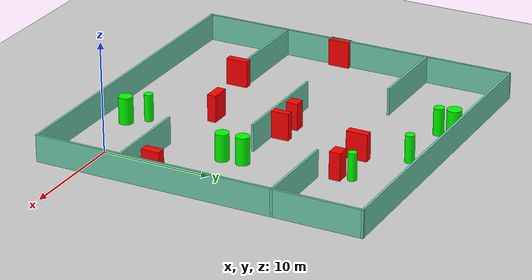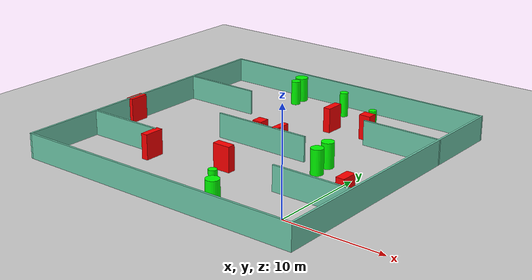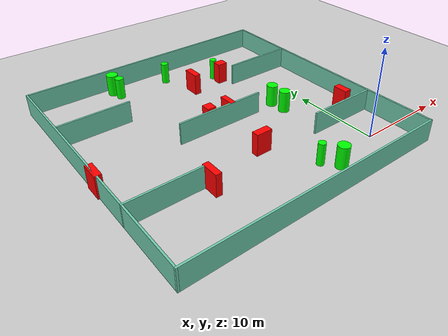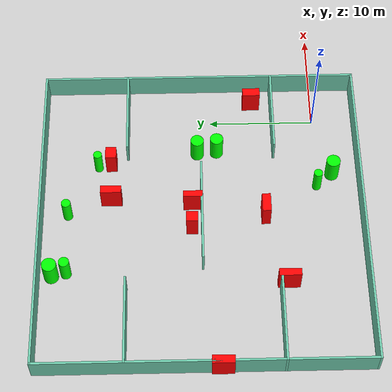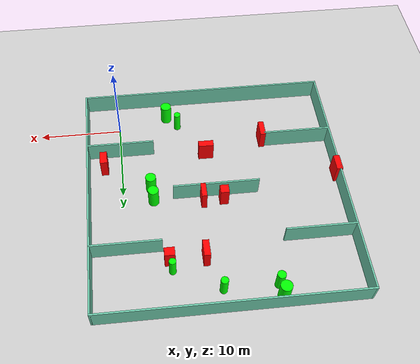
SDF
<sdf version="1.7">
 <world name="default">
  <light name="sun" type="directional">
   <pose>0 0 10 0 -0 0</pose>
   <diffuse>0.8 0.8 0.8 1</diffuse>
   <specular>0.2 0.2 0.2 1</specular>
   <attenuation>
    <range>1000</range>
    <constant>0.9</constant>
    <linear>0.01</linear>
    <quadratic>0.001</quadratic>
   </attenuation>
   <direction>-0.5 0.1 -0.9</direction>
   <spot><inner_angle>0</inner_angle><outer_angle>0</outer_angle><falloff>0</falloff></spot>
  </light>
  <model name="ground_plane">
   <static>1</static>
   <link name="link">
    <collision name="collision">
     <geometry><plane><normal>0 0 1</normal><size>100 100</size></plane></geometry>
     <surface>
      <contact><collide_bitmask>65535</collide_bitmask></contact>
      <friction><ode><mu>100</mu><mu2>50</mu2></ode></friction>
     </surface>
    </collision>
    <visual name="visual">
     <cast_shadows>0</cast_shadows>
     <geometry><plane><normal>0 0 1</normal><size>100 100</size></plane></geometry>
     <material>
      <script><uri>file://media/materials/scripts/gazebo.material</uri><name>Gazebo/Grey</name></script>
     </material>
    </visual>
   </link>
  </model>
  <gravity>0 0 -9.8</gravity>
  <magnetic_field>6e-06 2.3e-05 -4.2e-05</magnetic_field>
  <atmosphere type="adiabatic"/>
  <physics type="ode">
   <max_step_size>0.001</max_step_size>
   <real_time_factor>1</real_time_factor>
   <real_time_update_rate>1000</real_time_update_rate>
  </physics>
  <scene><ambient>0.4 0.4 0.4 1</ambient><background>0.7 0.7 0.7 1</background><shadows>1</shadows></scene>
  <spherical_coordinates>
   <surface_model>EARTH_WGS84</surface_model>
   <latitude_deg>0</latitude_deg>
   <longitude_deg>0</longitude_deg>
   <elevation>0</elevation>
   <heading_deg>0</heading_deg>
  </spherical_coordinates>
  <model name="my_base_walls">
   <link name="Wall_10">
    <collision name="Wall_10_Collision">
     <geometry><box><size>8.2 0.2 2.5</size></box></geometry>
     <pose>0 0 1.25 0 -0 0</pose>
    </collision>
    <visual name="Wall_10_Visual">
     <pose>0 0 1.25 0 -0 0</pose>
     <geometry><box><size>8.2 0.2 2.5</size></box></geometry>
     <material>
      <script><uri>file://media/materials/scripts/gazebo.material</uri><name>Gazebo/Grey</name></script>
      <ambient>0.435294 0.796078 0.67451 1</ambient>
     </material>
     <meta><layer>0</layer></meta>
    </visual>
    <pose>-11 -7 0 0 -0 0</pose>
   </link>
   <link name="Wall_12">
    <collision name="Wall_12_Collision">
     <geometry><box><size>8.2 0.2 2.5</size></box></geometry>
     <pose>0 0 1.25 0 -0 0</pose>
    </collision>
    <visual name="Wall_12_Visual">
     <pose>0 0 1.25 0 -0 0</pose>
     <geometry><box><size>8.2 0.2 2.5</size></box></geometry>
     <material>
      <script><uri>file://media/materials/scripts/gazebo.material</uri><name>Gazebo/Grey</name></script>
      <ambient>0.435294 0.796078 0.67451 1</ambient>
     </material>
     <meta><layer>0</layer></meta>
    </visual>
    <pose>-11 7 0 0 -0 0</pose>
   </link>
   <link name="Wall_14">
    <collision name="Wall_14_Collision">
     <geometry><box><size>8.2 0.2 2.5</size></box></geometry>
     <pose>0 0 1.25 0 -0 0</pose>
    </collision>
    <visual name="Wall_14_Visual">
     <pose>0 0 1.25 0 -0 0</pose>
     <geometry><box><size>8.2 0.2 2.5</size></box></geometry>
     <material>
      <script><uri>file://media/materials/scripts/gazebo.material</uri><name>Gazebo/Grey</name></script>
      <ambient>0.435294 0.796078 0.67451 1</ambient>
     </material>
     <meta><layer>0</layer></meta>
    </visual>
    <pose>11 7 0 0 -0 3.14159</pose>
   </link>
   <link name="Wall_16">
    <collision name="Wall_16_Collision">
     <geometry><box><size>10.2 0.2 2.5</size></box></geometry>
     <pose>0 0 1.25 0 -0 0</pose>
    </collision>
    <visual name="Wall_16_Visual">
     <pose>0 0 1.25 0 -0 0</pose>
     <geometry><box><size>10.2 0.2 2.5</size></box></geometry>
     <material>
      <script><uri>file://media/materials/scripts/gazebo.material</uri><name>Gazebo/Grey</name></script>
      <ambient>0.435294 0.796078 0.67451 1</ambient>
     </material>
     <meta><layer>0</layer></meta>
    </visual>
    <pose>0 0 0 0 -0 3.14159</pose>
   </link>
   <link name="Wall_2">
    <collision name="Wall_2_Collision">
     <geometry><box><size>30.2 0.2 2.5</size></box></geometry>
     <pose>0 0 1.25 0 -0 0</pose>
    </collision>
    <visual name="Wall_2_Visual">
     <pose>0 0 1.25 0 -0 0</pose>
     <geometry><box><size>30.2 0.2 2.5</size></box></geometry>
     <material>
      <script><uri>file://media/materials/scripts/gazebo.material</uri><name>Gazebo/Grey</name></script>
      <ambient>0.435294 0.796078 0.67451 1</ambient>
     </material>
     <meta><layer>0</layer></meta>
    </visual>
    <pose>0 -15 0 0 -0 3.14159</pose>
   </link>
   <link name="Wall_3">
    <collision name="Wall_3_Collision">
     <geometry><box><size>30.2 0.2 2.5</size></box></geometry>
     <pose>0 0 1.25 0 -0 0</pose>
    </collision>
    <visual name="Wall_3_Visual">
     <pose>0 0 1.25 0 -0 0</pose>
     <geometry><box><size>30.2 0.2 2.5</size></box></geometry>
     <material>
      <script><uri>file://media/materials/scripts/gazebo.material</uri><name>Gazebo/Grey</name></script>
      <ambient>0.435294 0.796078 0.67451 1</ambient>
     </material>
     <meta><layer>0</layer></meta>
    </visual>
    <pose>-15 0 0 0 -0 1.5708</pose>
   </link>
   <link name="Wall_4">
    <collision name="Wall_4_Collision">
     <geometry><box><size>30.2 0.2 2.5</size></box></geometry>
     <pose>0 0 1.25 0 -0 0</pose>
    </collision>
    <visual name="Wall_4_Visual">
     <pose>0 0 1.25 0 -0 0</pose>
     <geometry><box><size>30.2 0.2 2.5</size></box></geometry>
     <material>
      <script><uri>file://media/materials/scripts/gazebo.material</uri><name>Gazebo/Grey</name></script>
      <ambient>0.435294 0.796078 0.67451 1</ambient>
     </material>
     <meta><layer>0</layer></meta>
    </visual>
    <pose>0 15 0 0 -0 0</pose>
   </link>
   <link name="Wall_6">
    <collision name="Wall_6_Collision">
     <geometry><box><size>30.2 0.2 2.5</size></box></geometry>
     <pose>0 0 1.25 0 -0 0</pose>
    </collision>
    <visual name="Wall_6_Visual">
     <pose>0 0 1.25 0 -0 0</pose>
     <geometry><box><size>30.2 0.2 2.5</size></box></geometry>
     <material>
      <script><uri>file://media/materials/scripts/gazebo.material</uri><name>Gazebo/Grey</name></script>
      <ambient>0.435294 0.796078 0.67451 1</ambient>
     </material>
     <meta><layer>0</layer></meta>
    </visual>
    <pose>15 0 0 0 -0 1.5708</pose>
   </link>
   <link name="Wall_8">
    <collision name="Wall_8_Collision">
     <geometry><box><size>8.2 0.2 2.5</size></box></geometry>
     <pose>0 0 1.25 0 -0 0</pose>
    </collision>
    <visual name="Wall_8_Visual">
     <pose>0 0 1.25 0 -0 0</pose>
     <geometry><box><size>8.2 0.2 2.5</size></box></geometry>
     <material>
      <script><uri>file://media/materials/scripts/gazebo.material</uri><name>Gazebo/Grey</name></script>
      <ambient>0.435294 0.796078 0.67451 1</ambient>
     </material>
     <meta><layer>0</layer></meta>
    </visual>
    <pose>11 -7 0 0 -0 3.14159</pose>
   </link>
   <static>1</static>
   <pose>-11 11 0 0 -0 0</pose>
  </model>
  <model name="cylinder1">
   <static>1</static>
   <link name="link">
    <inertial>
     <mass>1</mass>
     <inertia><ixx>0.5</ixx><ixy>0</ixy><ixz>0</ixz><iyy>0.5</iyy><iyz>0</iyz><izz>1</izz></inertia>
    </inertial>
    <collision name="collision">
     <geometry><cylinder><radius>0.39773920601474416</radius><length>2.5</length></cylinder></geometry>
    </collision>
    <visual name="visual">
     <geometry><cylinder><radius>0.39773920601474416</radius><length>2.5</length></cylinder></geometry>
     <material>
      <ambient>0 1 0 1</ambient>
      <diffuse>0 1 0 1</diffuse>
      <specular>0.1 0.1 0.1 1</specular>
      <emissive>0 0 0 0</emissive>
     </material>
    </visual>
   </link>
   <pose>-4.966178810164049 20.776802019662576 1.25 0 0 0</pose>
  </model>
  <model name="cylinder2">
   <static>1</static>
   <link name="link">
    <inertial>
     <mass>1</mass>
     <inertia><ixx>0.5</ixx><ixy>0</ixy><ixz>0</ixz><iyy>0.5</iyy><iyz>0</iyz><izz>1</izz></inertia>
    </inertial>
    <collision name="collision">
     <geometry><cylinder><radius>0.6487309719642617</radius><length>2.5</length></cylinder></geometry>
    </collision>
    <visual name="visual">
     <geometry><cylinder><radius>0.6487309719642617</radius><length>2.5</length></cylinder></geometry>
     <material>
      <ambient>0 1 0 1</ambient>
      <diffuse>0 1 0 1</diffuse>
      <specular>0.1 0.1 0.1 1</specular>
      <emissive>0 0 0 0</emissive>
     </material>
    </visual>
   </link>
   <pose>-6.097893409201156 -1.4959501579975467 1.25 0 0 0</pose>
  </model>
  <model name="cylinder3">
   <static>1</static>
   <link name="link">
    <inertial>
     <mass>1</mass>
     <inertia><ixx>0.5</ixx><ixy>0</ixy><ixz>0</ixz><iyy>0.5</iyy><iyz>0</iyz><izz>1</izz></inertia>
    </inertial>
    <collision name="collision">
     <geometry><cylinder><radius>0.4312703089803247</radius><length>2.5</length></cylinder></geometry>
    </collision>
    <visual name="visual">
     <geometry><cylinder><radius>0.4312703089803247</radius><length>2.5</length></cylinder></geometry>
     <material>
      <ambient>0 1 0 1</ambient>
      <diffuse>0 1 0 1</diffuse>
      <specular>0.1 0.1 0.1 1</specular>
      <emissive>0 0 0 0</emissive>
     </material>
    </visual>
   </link>
   <pose>-10.244655029453149 23.548341655841156 1.25 0 0 0</pose>
  </model>
  <model name="cylinder4">
   <static>1</static>
   <link name="link">
    <inertial>
     <mass>1</mass>
     <inertia><ixx>0.5</ixx><ixy>0</ixy><ixz>0</ixz><iyy>0.5</iyy><iyz>0</iyz><izz>1</izz></inertia>
    </inertial>
    <collision name="collision">
     <geometry><cylinder><radius>0.4044187753928252</radius><length>2.5</length></cylinder></geometry>
    </collision>
    <visual name="visual">
     <geometry><cylinder><radius>0.4044187753928252</radius><length>2.5</length></cylinder></geometry>
     <material>
      <ambient>0 1 0 1</ambient>
      <diffuse>0 1 0 1</diffuse>
      <specular>0.1 0.1 0.1 1</specular>
      <emissive>0 0 0 0</emissive>
     </material>
    </visual>
   </link>
   <pose>-7.4131797498391805 0.021878081976613117 1.25 0 0 0</pose>
  </model>
  <model name="cylinder5">
   <static>1</static>
   <link name="link">
    <inertial>
     <mass>1</mass>
     <inertia><ixx>0.5</ixx><ixy>0</ixy><ixz>0</ixz><iyy>0.5</iyy><iyz>0</iyz><izz>1</izz></inertia>
    </inertial>
    <collision name="collision">
     <geometry><cylinder><radius>0.6215566830722362</radius><length>2.5</length></cylinder></geometry>
    </collision>
    <visual name="visual">
     <geometry><cylinder><radius>0.6215566830722362</radius><length>2.5</length></cylinder></geometry>
     <material>
      <ambient>0 1 0 1</ambient>
      <diffuse>0 1 0 1</diffuse>
      <specular>0.1 0.1 0.1 1</specular>
      <emissive>0 0 0 0</emissive>
     </material>
    </visual>
   </link>
   <pose>-3.5636596658001096 11.328460848494792 1.25 0 0 0</pose>
  </model>
  <model name="cylinder6">
   <static>1</static>
   <link name="link">
    <inertial>
     <mass>1</mass>
     <inertia><ixx>0.5</ixx><ixy>0</ixy><ixz>0</ixz><iyy>0.5</iyy><iyz>0</iyz><izz>1</izz></inertia>
    </inertial>
    <collision name="collision">
     <geometry><cylinder><radius>0.4841477561469988</radius><length>2.5</length></cylinder></geometry>
    </collision>
    <visual name="visual">
     <geometry><cylinder><radius>0.4841477561469988</radius><length>2.5</length></cylinder></geometry>
     <material>
      <ambient>0 1 0 1</ambient>
      <diffuse>0 1 0 1</diffuse>
      <specular>0.1 0.1 0.1 1</specular>
      <emissive>0 0 0 0</emissive>
     </material>
    </visual>
   </link>
   <pose>-16.3467686682445 23.49086241897885 1.25 0 0 0</pose>
  </model>
  <model name="cylinder7">
   <static>1</static>
   <link name="link">
    <inertial>
     <mass>1</mass>
     <inertia><ixx>0.5</ixx><ixy>0</ixy><ixz>0</ixz><iyy>0.5</iyy><iyz>0</iyz><izz>1</izz></inertia>
    </inertial>
    <collision name="collision">
     <geometry><cylinder><radius>0.6191594963244941</radius><length>2.5</length></cylinder></geometry>
    </collision>
    <visual name="visual">
     <geometry><cylinder><radius>0.6191594963244941</radius><length>2.5</length></cylinder></geometry>
     <material>
      <ambient>0 1 0 1</ambient>
      <diffuse>0 1 0 1</diffuse>
      <specular>0.1 0.1 0.1 1</specular>
      <emissive>0 0 0 0</emissive>
     </material>
    </visual>
   </link>
   <pose>-3.390610549267251 9.47016851570031 1.25 0 0 0</pose>
  </model>
  <model name="cylinder8">
   <static>1</static>
   <link name="link">
    <inertial>
     <mass>1</mass>
     <inertia><ixx>0.5</ixx><ixy>0</ixy><ixz>0</ixz><iyy>0.5</iyy><iyz>0</iyz><izz>1</izz></inertia>
    </inertial>
    <collision name="collision">
     <geometry><cylinder><radius>0.6679686240588119</radius><length>2.5</length></cylinder></geometry>
    </collision>
    <visual name="visual">
     <geometry><cylinder><radius>0.6679686240588119</radius><length>2.5</length></cylinder></geometry>
     <material>
      <ambient>0 1 0 1</ambient>
      <diffuse>0 1 0 1</diffuse>
      <specular>0.1 0.1 0.1 1</specular>
      <emissive>0 0 0 0</emissive>
     </material>
    </visual>
   </link>
   <pose>-16.600472337300502 24.810342907404458 1.25 0 0 0</pose>
  </model>
  <model name="box1">
   <static>1</static>
   <link name="link">
    <inertial>
     <mass>1</mass>
     <inertia><ixx>0.083</ixx><ixy>0</ixy><ixz>0</ixz><iyy>0.083</iyy><iyz>0</iyz><izz>0.083</izz></inertia>
    </inertial>
    <collision name="collision">
     <geometry><box><size>0.6165797989785441 1.8076861081068085 2.5</size></box></geometry>
    </collision>
    <visual name="visual">
     <geometry><box><size>0.6165797989785441 1.8076861081068085 2.5</size></box></geometry>
     <material>
      <ambient>1 0 0 1</ambient>
      <diffuse>1 0 0 1</diffuse>
      <specular>0.1 0.1 0.1 1</specular>
      <emissive>0 0 0 0</emissive>
     </material>
    </visual>
    <sensor name="my_contact" type="contact">
     <contact><collision>box_collision</collision><topic>__default_topic__</topic></contact>
    </sensor>
   </link>
   <pose>-9.428998333733134 11.820715139027989 1.25 0 0 0</pose>
  </model>
  <model name="box2">
   <static>1</static>
   <link name="link">
    <inertial>
     <mass>1</mass>
     <inertia><ixx>0.083</ixx><ixy>0</ixy><ixz>0</ixz><iyy>0.083</iyy><iyz>0</iyz><izz>0.083</izz></inertia>
    </inertial>
    <collision name="collision">
     <geometry><box><size>0.671224652059381 2.027996404587087 2.5</size></box></geometry>
    </collision>
    <visual name="visual">
     <geometry><box><size>0.671224652059381 2.027996404587087 2.5</size></box></geometry>
     <material>
      <ambient>1 0 0 1</ambient>
      <diffuse>1 0 0 1</diffuse>
      <specular>0.1 0.1 0.1 1</specular>
      <emissive>0 0 0 0</emissive>
     </material>
    </visual>
    <sensor name="my_contact" type="contact">
     <contact><collision>box_collision</collision><topic>__default_topic__</topic></contact>
    </sensor>
   </link>
   <pose>-17.7294485572609 3.2625806154901458 1.25 0 0 0</pose>
  </model>
  <model name="box3">
   <static>1</static>
   <link name="link">
    <inertial>
     <mass>1</mass>
     <inertia><ixx>0.083</ixx><ixy>0</ixy><ixz>0</ixz><iyy>0.083</iyy><iyz>0</iyz><izz>0.083</izz></inertia>
    </inertial>
    <collision name="collision">
     <geometry><box><size>0.8497718175235993 1.6683828275438282 2.5</size></box></geometry>
    </collision>
    <visual name="visual">
     <geometry><box><size>0.8497718175235993 1.6683828275438282 2.5</size></box></geometry>
     <material>
      <ambient>1 0 0 1</ambient>
      <diffuse>1 0 0 1</diffuse>
      <specular>0.1 0.1 0.1 1</specular>
      <emissive>0 0 0 0</emissive>
     </material>
    </visual>
    <sensor name="my_contact" type="contact">
     <contact><collision>box_collision</collision><topic>__default_topic__</topic></contact>
    </sensor>
   </link>
   <pose>2.0656806394460396 5.95520720719594 1.25 0 0 0</pose>
  </model>
  <model name="box4">
   <static>1</static>
   <link name="link">
    <inertial>
     <mass>1</mass>
     <inertia><ixx>0.083</ixx><ixy>0</ixy><ixz>0</ixz><iyy>0.083</iyy><iyz>0</iyz><izz>0.083</izz></inertia>
    </inertial>
    <collision name="collision">
     <geometry><box><size>1.8161889812360519 0.8078899212424762 2.5</size></box></geometry>
    </collision>
    <visual name="visual">
     <geometry><box><size>1.8161889812360519 0.8078899212424762 2.5</size></box></geometry>
     <material>
      <ambient>1 0 0 1</ambient>
      <diffuse>1 0 0 1</diffuse>
      <specular>0.1 0.1 0.1 1</specular>
      <emissive>0 0 0 0</emissive>
     </material>
    </visual>
    <sensor name="my_contact" type="contact">
     <contact><collision>box_collision</collision><topic>__default_topic__</topic></contact>
    </sensor>
   </link>
   <pose>-10.49112688561242 5.026596757921903 1.25 0 0 0</pose>
  </model>
  <model name="box5">
   <static>1</static>
   <link name="link">
    <inertial>
     <mass>1</mass>
     <inertia><ixx>0.083</ixx><ixy>0</ixy><ixz>0</ixz><iyy>0.083</iyy><iyz>0</iyz><izz>0.083</izz></inertia>
    </inertial>
    <collision name="collision">
     <geometry><box><size>1.0220639488328795 1.07745386745199 2.5</size></box></geometry>
    </collision>
    <visual name="visual">
     <geometry><box><size>1.0220639488328795 1.07745386745199 2.5</size></box></geometry>
     <material>
      <ambient>1 0 0 1</ambient>
      <diffuse>1 0 0 1</diffuse>
      <specular>0.1 0.1 0.1 1</specular>
      <emissive>0 0 0 0</emissive>
     </material>
    </visual>
    <sensor name="my_contact" type="contact">
     <contact><collision>box_collision</collision><topic>__default_topic__</topic></contact>
    </sensor>
   </link>
   <pose>-11.84613730899089 11.936582800894689 1.25 0 0 0</pose>
  </model>
  <model name="box6">
   <static>1</static>
   <link name="link">
    <inertial>
     <mass>1</mass>
     <inertia><ixx>0.083</ixx><ixy>0</ixy><ixz>0</ixz><iyy>0.083</iyy><iyz>0</iyz><izz>0.083</izz></inertia>
    </inertial>
    <collision name="collision">
     <geometry><box><size>1.1865753521804732 1.0081276482307682 2.5</size></box></geometry>
    </collision>
    <visual name="visual">
     <geometry><box><size>1.1865753521804732 1.0081276482307682 2.5</size></box></geometry>
     <material>
      <ambient>1 0 0 1</ambient>
      <diffuse>1 0 0 1</diffuse>
      <specular>0.1 0.1 0.1 1</specular>
      <emissive>0 0 0 0</emissive>
     </material>
    </visual>
    <sensor name="my_contact" type="contact">
     <contact><collision>box_collision</collision><topic>__default_topic__</topic></contact>
    </sensor>
   </link>
   <pose>-4.751596835642765 19.537991898220156 1.25 0 0 0</pose>
  </model>
  <model name="box7">
   <static>1</static>
   <link name="link">
    <inertial>
     <mass>1</mass>
     <inertia><ixx>0.083</ixx><ixy>0</ixy><ixz>0</ixz><iyy>0.083</iyy><iyz>0</iyz><izz>0.083</izz></inertia>
    </inertial>
    <collision name="collision">
     <geometry><box><size>0.7371696684545069 2.0087469950894667 2.5</size></box></geometry>
    </collision>
    <visual name="visual">
     <geometry><box><size>0.7371696684545069 2.0087469950894667 2.5</size></box></geometry>
     <material>
      <ambient>1 0 0 1</ambient>
      <diffuse>1 0 0 1</diffuse>
      <specular>0.1 0.1 0.1 1</specular>
      <emissive>0 0 0 0</emissive>
     </material>
    </visual>
    <sensor name="my_contact" type="contact">
     <contact><collision>box_collision</collision><topic>__default_topic__</topic></contact>
    </sensor>
   </link>
   <pose>-25.897449278581824 9.455467622712034 1.25 0 0 0</pose>
  </model>
  <model name="box8">
   <static>1</static>
   <link name="link">
    <inertial>
     <mass>1</mass>
     <inertia><ixx>0.083</ixx><ixy>0</ixy><ixz>0</ixz><iyy>0.083</iyy><iyz>0</iyz><izz>0.083</izz></inertia>
    </inertial>
    <collision name="collision">
     <geometry><box><size>0.730587479084534 1.9404986409457088 2.5</size></box></geometry>
    </collision>
    <visual name="visual">
     <geometry><box><size>0.730587479084534 1.9404986409457088 2.5</size></box></geometry>
     <material>
      <ambient>1 0 0 1</ambient>
      <diffuse>1 0 0 1</diffuse>
      <specular>0.1 0.1 0.1 1</specular>
      <emissive>0 0 0 0</emissive>
     </material>
    </visual>
    <sensor name="my_contact" type="contact">
     <contact><collision>box_collision</collision><topic>__default_topic__</topic></contact>
    </sensor>
   </link>
   <pose>-8.815803342685891 19.46396588358192 1.25 0 0 0</pose>
  </model>
 </world>
</sdf>
